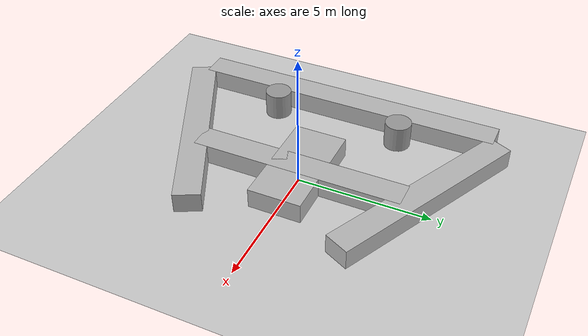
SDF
<sdf version='1.6'>
  <world name='default'>

    <include>
      <uri>model://ground_plane</uri>
    </include>

    <include>
      <uri>model://sun</uri>
    </include>

    <model name='brick_wall_u'>
      <static>1</static>
      <link name='chassis'>
        <pose frame=''>0 0 0 0 0 0</pose>
        <collision name='collision'>
          <geometry>
            <box>
              <size>8 1 1.5</size>
            </box>
          </geometry>
          <max_contacts>10</max_contacts>
        </collision>
        <visual name='visual'>
          <geometry>
            <mesh>
              <uri>model://brick_box_3x1x3/meshes/simple_box.dae</uri>
              <scale>8 1 1.5</scale>
            </mesh>
          </geometry>
          <material>
            <script>
              <uri>model://brick_box_3x1x3/materials/scripts</uri>
              <uri>model://brick_box_3x1x3/materials/textures</uri>
              <name>BrickBox/Diffuse</name>
            </script>
          </material>
        </visual>
        <self_collide>0</self_collide>
        <kinematic>0</kinematic>
        <gravity>1</gravity>
      </link>
      <pose frame=''>-0.5 4.5 0 0 0 -0.45</pose>
    </model>

    <model name='brick_wall_d'>
      <static>1</static>
      <link name='chassis'>
        <pose frame=''>0 0 0 0 0 0</pose>
        <collision name='collision'>
          <geometry>
            <box>
              <size>8 1 1.5</size>
            </box>
          </geometry>
          <max_contacts>10</max_contacts>
        </collision>
        <visual name='visual'>
          <geometry>
            <mesh>
              <uri>model://brick_box_3x1x3/meshes/simple_box.dae</uri>
              <scale>8 1 1.5</scale>
            </mesh>
          </geometry>
          <material>
            <script>
              <uri>model://brick_box_3x1x3/materials/scripts</uri>
              <uri>model://brick_box_3x1x3/materials/textures</uri>
              <name>BrickBox/Diffuse</name>
            </script>
          </material>
        </visual>
        <self_collide>0</self_collide>
        <kinematic>0</kinematic>
        <gravity>1</gravity>
      </link>
      <pose frame=''>-0.5 -4.5 0 0 0 0.45</pose>
    </model>

    <model name='brick_wall_l'>
      <static>1</static>
      <link name='chassis'>
        <pose frame=''>0 0 0 0 0 0</pose>
        <collision name='collision'>
          <geometry>
            <box>
              <size>1 12 1.5</size>
            </box>
          </geometry>
          <max_contacts>10</max_contacts>
        </collision>
        <visual name='visual'>
          <geometry>
            <mesh>
              <uri>model://brick_box_3x1x3/meshes/simple_box.dae</uri>
              <scale>1 12 1.5</scale>
            </mesh>
          </geometry>
          <material>
            <script>
              <uri>model://brick_box_3x1x3/materials/scripts</uri>
              <uri>model://brick_box_3x1x3/materials/textures</uri>
              <name>BrickBox/Diffuse</name>
            </script>
          </material>
        </visual>
        <self_collide>0</self_collide>
        <kinematic>0</kinematic>
        <gravity>1</gravity>
      </link>
      <pose frame=''>-4.5 0 0 0 0 0</pose>
    </model>

    <model name='brick_wall_mh'>
      <static>1</static>
      <link name='chassis'>
        <pose frame=''>0 0 0 0 0 0</pose>
        <collision name='collision'>
          <geometry>
            <box>
              <size>4 2 1.5</size>
            </box>
          </geometry>
          <max_contacts>10</max_contacts>
        </collision>
        <visual name='visual'>
          <geometry>
            <mesh>
              <uri>model://brick_box_3x1x3/meshes/simple_box.dae</uri>
              <scale>4 2 1.5</scale>
            </mesh>
          </geometry>
          <material>
            <script>
              <uri>model://brick_box_3x1x3/materials/scripts</uri>
              <uri>model://brick_box_3x1x3/materials/textures</uri>
              <name>BrickBox/Diffuse</name>
            </script>
          </material>
        </visual>
        <self_collide>0</self_collide>
        <kinematic>0</kinematic>
        <gravity>1</gravity>
      </link>
      <pose frame=''>0 0 0 0 0 0</pose>
    </model>

    <model name='brick_wall_mv'>
      <static>1</static>
      <link name='chassis'>
        <pose frame=''>0 0 0 0 0 0</pose>
        <collision name='collision'>
          <geometry>
            <box>
              <size>1 8 1.5</size>
            </box>
          </geometry>
          <max_contacts>10</max_contacts>
        </collision>
        <visual name='visual'>
          <geometry>
            <mesh>
              <uri>model://brick_box_3x1x3/meshes/simple_box.dae</uri>
              <scale>1 8 1.5</scale>
            </mesh>
          </geometry>
          <material>
            <script>
              <uri>model://brick_box_3x1x3/materials/scripts</uri>
              <uri>model://brick_box_3x1x3/materials/textures</uri>
              <name>BrickBox/Diffuse</name>
            </script>
          </material>
        </visual>
        <self_collide>0</self_collide>
        <kinematic>0</kinematic>
        <gravity>1</gravity>
      </link>
      <pose frame=''>0 0 0 0 0 0</pose>
    </model>

    <model name='unit_cylinder_0'>
      <pose frame=''>-3.5 2.5 0.5 0 -0 0</pose>
      <link name='link'>
        <inertial>
          <mass>1</mass>
          <inertia>
            <ixx>0.145833</ixx>
            <ixy>0</ixy>
            <ixz>0</ixz>
            <iyy>0.145833</iyy>
            <iyz>0</iyz>
            <izz>0.125</izz>
          </inertia>
        </inertial>
        <collision name='collision'>
          <geometry>
            <cylinder>
              <radius>0.5</radius>
              <length>1</length>
            </cylinder>
          </geometry>
          <max_contacts>10</max_contacts>
          <surface>
            <contact>
              <ode/>
            </contact>
            <bounce/>
            <friction>
              <torsional>
                <ode/>
              </torsional>
              <ode/>
            </friction>
          </surface>
        </collision>
        <visual name='visual'>
          <geometry>
            <cylinder>
              <radius>0.5</radius>
              <length>1</length>
            </cylinder>
          </geometry>
          <material>
            <script>
              <name>Gazebo/Grey</name>
              <uri>file://media/materials/scripts/gazebo.material</uri>
            </script>
          </material>
        </visual>
        <self_collide>0</self_collide>
        <enable_wind>0</enable_wind>
        <kinematic>0</kinematic>
      </link>
    </model>

    <model name='unit_cylinder_1'>
      <pose frame=''>-3.5 -2.5 0.5 0 -0 0</pose>
      <link name='link'>
        <inertial>
          <mass>1</mass>
          <inertia>
            <ixx>0.145833</ixx>
            <ixy>0</ixy>
            <ixz>0</ixz>
            <iyy>0.145833</iyy>
            <iyz>0</iyz>
            <izz>0.125</izz>
          </inertia>
        </inertial>
        <collision name='collision'>
          <geometry>
            <cylinder>
              <radius>0.5</radius>
              <length>1</length>
            </cylinder>
          </geometry>
          <max_contacts>10</max_contacts>
          <surface>
            <contact>
              <ode/>
            </contact>
            <bounce/>
            <friction>
              <torsional>
                <ode/>
              </torsional>
              <ode/>
            </friction>
          </surface>
        </collision>
        <visual name='visual'>
          <geometry>
            <cylinder>
              <radius>0.5</radius>
              <length>1</length>
            </cylinder>
          </geometry>
          <material>
            <script>
              <name>Gazebo/Grey</name>
              <uri>file://media/materials/scripts/gazebo.material</uri>
            </script>
          </material>
        </visual>
        <self_collide>0</self_collide>
        <enable_wind>0</enable_wind>
        <kinematic>0</kinematic>
      </link>
    </model>

  </world>
</sdf>
